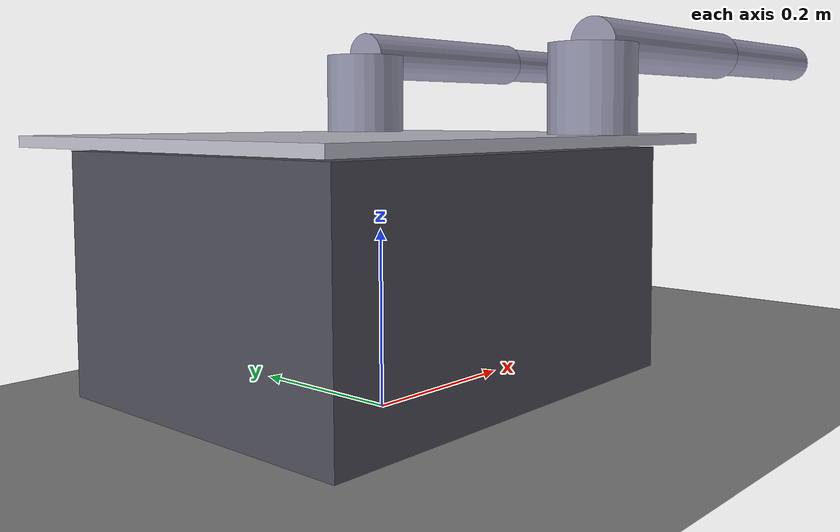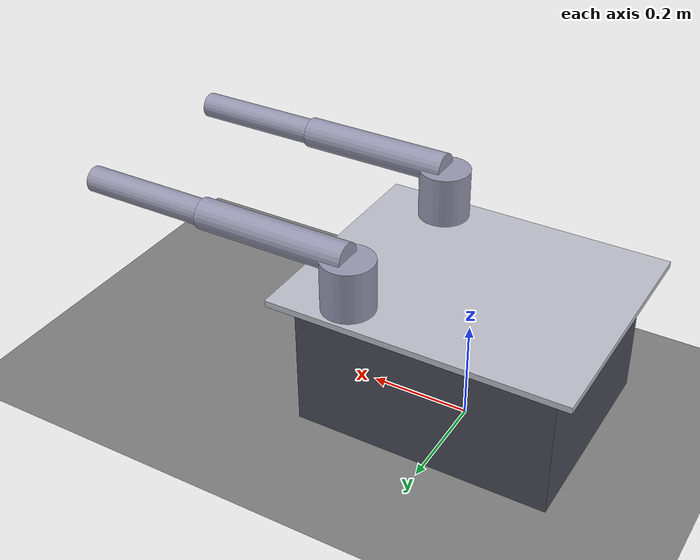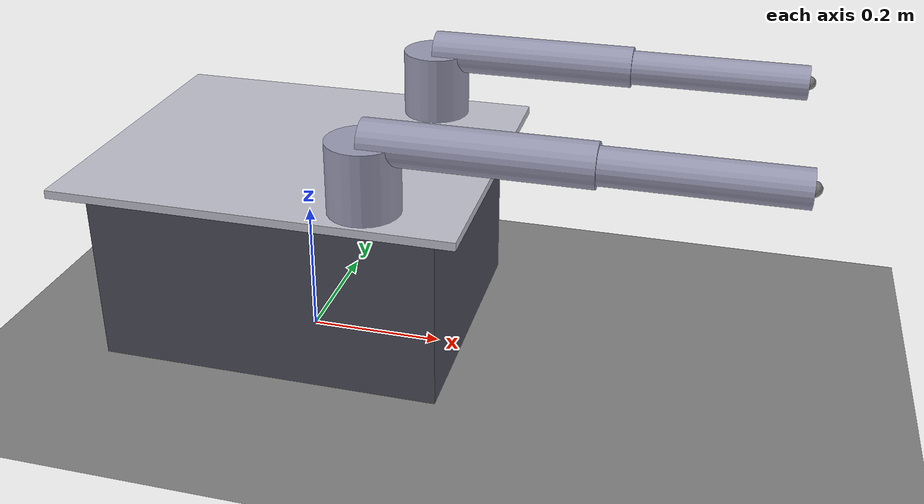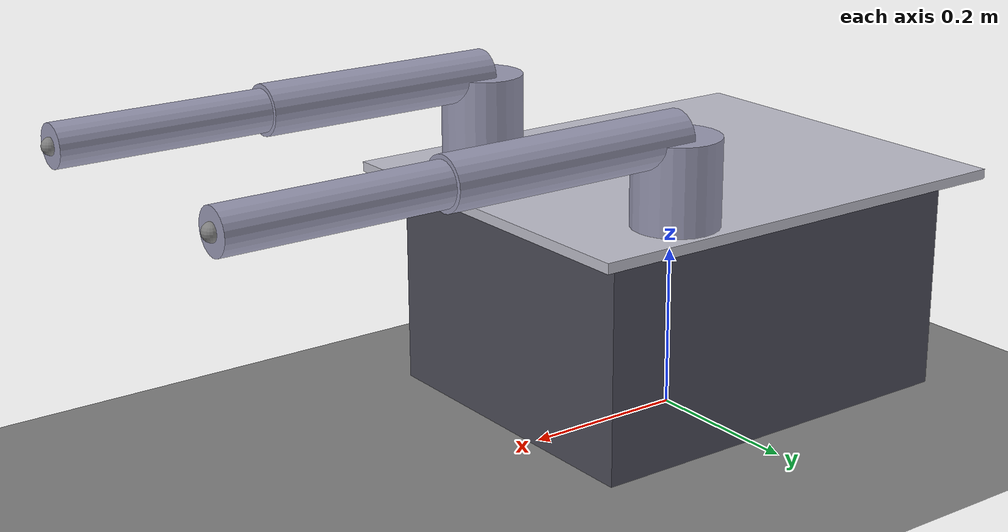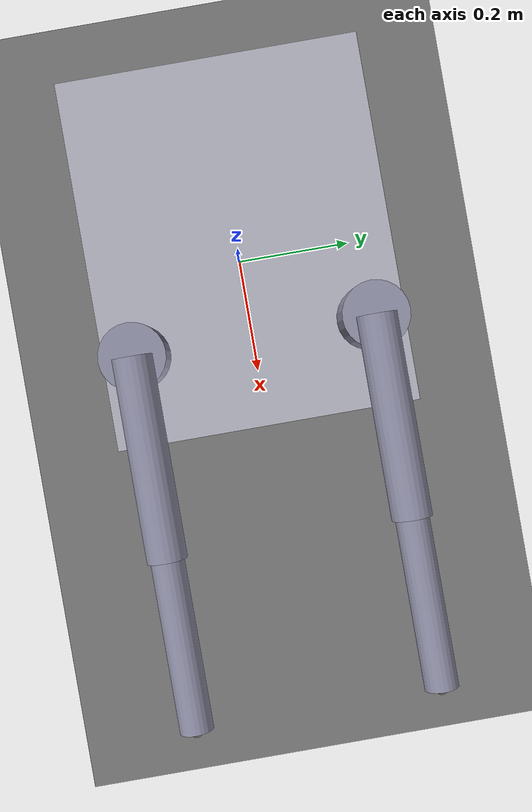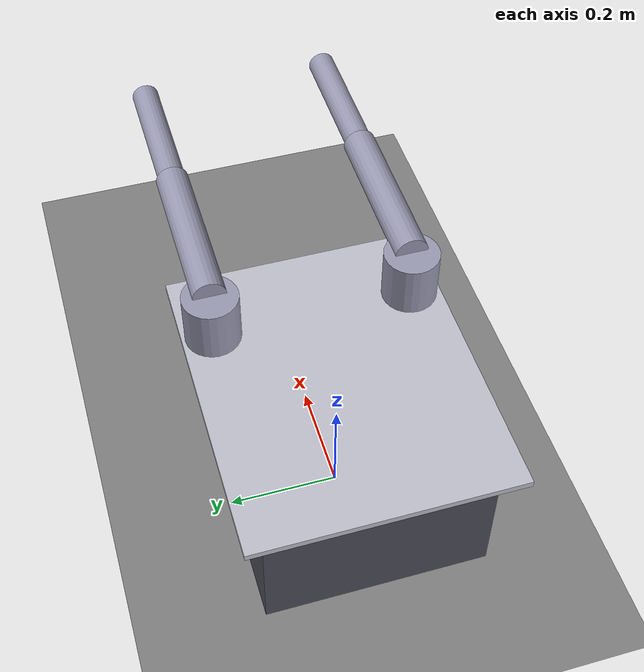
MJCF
<mujoco model="MuJoCo Model">
  <compiler angle="radian"/>

  <option integrator="implicitfast"/>

  <default>
    <default class="left_main">
      <default class="left_arm_joint">
        <joint damping="0.05" axis="0 1 0"/>
      </default>
      <default class="left_visual">
        <geom contype="0" conaffinity="0" group="2" rgba="0.6 0.6 0.7 1" density="0"/>
      </default>
      <default class="left_collision">
        <geom group="3" rgba="0.9 0.4 0.3 0.4"/>
      </default>
    </default>
    <default class="right_main">
      <default class="right_arm_joint">
        <joint damping="0.05" axis="0 1 0"/>
      </default>
      <default class="right_visual">
        <geom contype="0" conaffinity="0" group="2" rgba="0.6 0.6 0.7 1" density="0"/>
      </default>
      <default class="right_collision">
        <geom group="3" rgba="0.9 0.4 0.3 0.4"/>
      </default>
    </default>
  </default>

  <worldbody>
    <geom name="floor" size="3 3 0.05" type="plane"/>
    <light pos="0 -1 2.5" dir="0 0.371391 -0.928477"/>
    <body name="base" pos="0 0 0.3">
      <joint name="base_x" type="slide" damping="1" axis="1 0 0"/>
      <joint name="base_y" type="slide" damping="1" axis="0 1 0"/>
      <joint name="base_yaw" damping="1"/>
      <geom name="plate" size="0.2875 0.236 0.006" type="box" rgba="0.75 0.75 0.8 1" mass="3.7"/>
      <geom name="chassis" size="0.25 0.2 0.13" pos="0 0 -0.14" type="box" rgba="0.3 0.3 0.35 1" mass="20"/>
      <frame pos="0.15 0.18 0.006">
        <body name="left_base_link">
          <inertial pos="0 0 0.05" mass="2" diaginertia="0.0029167 0.0029167 0.0025"/>
          <geom class="left_visual" size="0.05 0.05" pos="0 0 0.05" type="cylinder"/>
          <body name="left_link1" pos="0 0 0.1">
            <inertial pos="0.15 0 0" mass="1" diaginertia="0.00045 0.007725 0.007725"/>
            <joint name="left_shoulder" class="left_arm_joint" range="-1.5708 1.5708"/>
            <geom class="left_visual" size="0.03 0.15" pos="0.15 0 0" quat="0.707107 0 -0.707107 0" type="cylinder"/>
            <geom class="left_collision" size="0.03 0.15" pos="0.15 0 0" quat="0.707107 0 -0.707107 0" type="cylinder"/>
            <body name="left_link2" pos="0.3 0 0">
              <inertial pos="0.125 0 0" mass="0.6" diaginertia="0.0001875 0.0032188 0.0032188"/>
              <joint name="left_elbow" class="left_arm_joint" range="-2.3562 2.3562"/>
              <geom class="left_visual" size="0.025 0.125" pos="0.125 0 0" quat="0.707107 0 -0.707107 0" type="cylinder"/>
              <geom class="left_collision" size="0.025 0.125" pos="0.125 0 0" quat="0.707107 0 -0.707107 0" type="cylinder"/>
              <site name="left_tool0" size="0.01" pos="0.25 0 0"/>
            </body>
          </body>
        </body>
      </frame>
      <frame pos="0.15 -0.18 0.006">
        <body name="right_base_link">
          <inertial pos="0 0 0.05" mass="2" diaginertia="0.0029167 0.0029167 0.0025"/>
          <geom class="right_visual" size="0.05 0.05" pos="0 0 0.05" type="cylinder"/>
          <body name="right_link1" pos="0 0 0.1">
            <inertial pos="0.15 0 0" mass="1" diaginertia="0.00045 0.007725 0.007725"/>
            <joint name="right_shoulder" class="right_arm_joint" range="-1.5708 1.5708"/>
            <geom class="right_visual" size="0.03 0.15" pos="0.15 0 0" quat="0.707107 0 -0.707107 0" type="cylinder"/>
            <geom class="right_collision" size="0.03 0.15" pos="0.15 0 0" quat="0.707107 0 -0.707107 0" type="cylinder"/>
            <body name="right_link2" pos="0.3 0 0">
              <inertial pos="0.125 0 0" mass="0.6" diaginertia="0.0001875 0.0032188 0.0032188"/>
              <joint name="right_elbow" class="right_arm_joint" range="-2.3562 2.3562"/>
              <geom class="right_visual" size="0.025 0.125" pos="0.125 0 0" quat="0.707107 0 -0.707107 0" type="cylinder"/>
              <geom class="right_collision" size="0.025 0.125" pos="0.125 0 0" quat="0.707107 0 -0.707107 0" type="cylinder"/>
              <site name="right_tool0" size="0.01" pos="0.25 0 0"/>
            </body>
          </body>
        </body>
      </frame>
    </body>
  </worldbody>

  <actuator>
    <general name="base_x_vel" joint="base_x" forcelimited="true" forcerange="-200 200" biastype="affine" gainprm="200" biasprm="0 0 -200"/>
    <general name="base_y_vel" joint="base_y" forcelimited="true" forcerange="-200 200" biastype="affine" gainprm="200" biasprm="0 0 -200"/>
    <general name="base_yaw_vel" joint="base_yaw" forcelimited="true" forcerange="-200 200" biastype="affine" gainprm="200" biasprm="0 0 -200"/>
    <general name="left_shoulder_pos" joint="left_shoulder" forcelimited="true" forcerange="-40 40" biastype="affine" gainprm="50" biasprm="0 -50 -1"/>
    <general name="left_elbow_pos" joint="left_elbow" forcelimited="true" forcerange="-20 20" biastype="affine" gainprm="50" biasprm="0 -50 -1"/>
    <general name="right_shoulder_pos" joint="right_shoulder" forcelimited="true" forcerange="-40 40" biastype="affine" gainprm="50" biasprm="0 -50 -1"/>
    <general name="right_elbow_pos" joint="right_elbow" forcelimited="true" forcerange="-20 20" biastype="affine" gainprm="50" biasprm="0 -50 -1"/>
  </actuator>
</mujoco>
